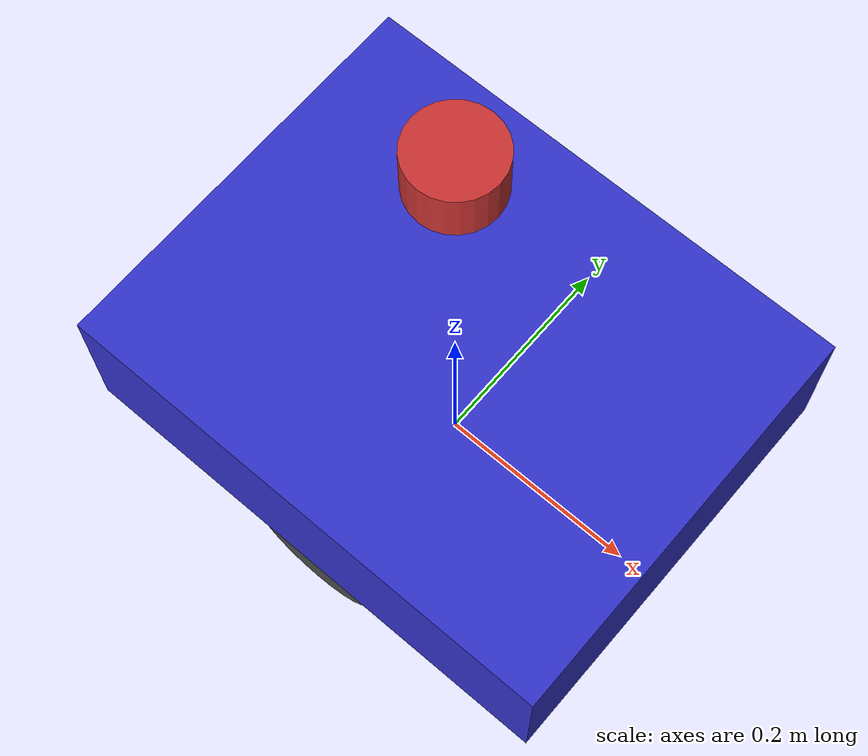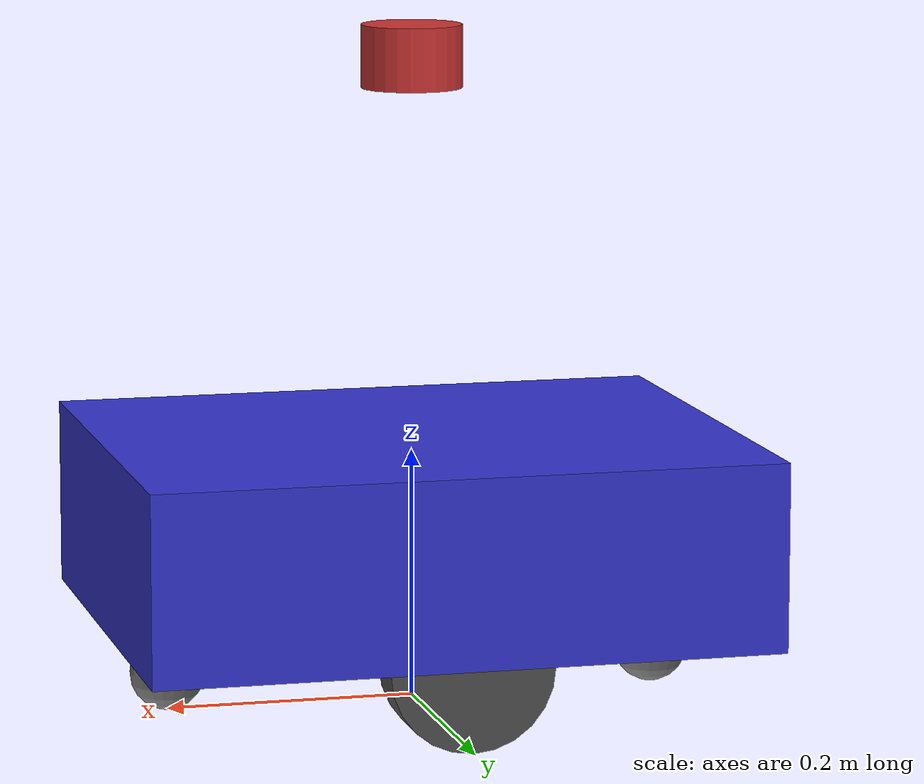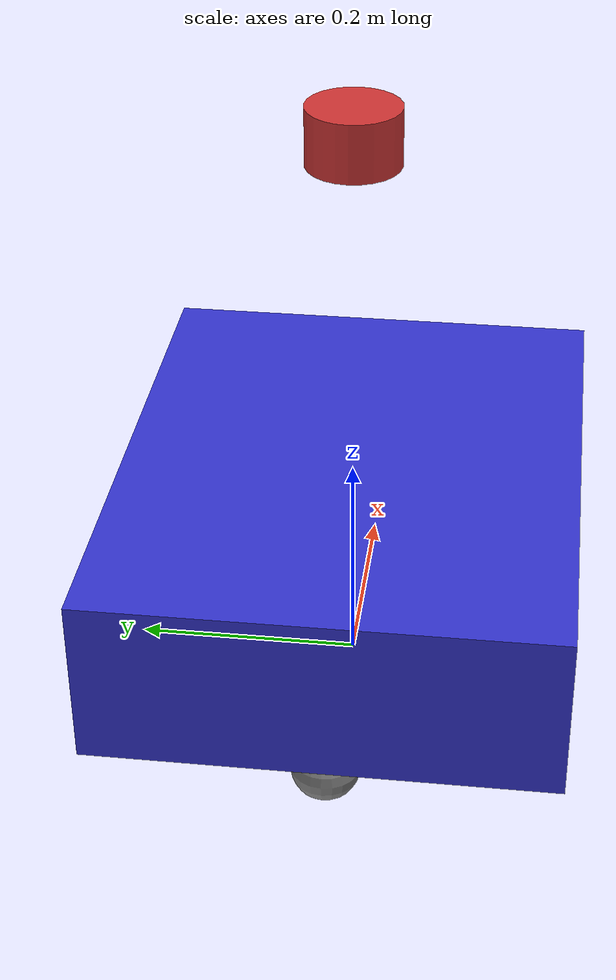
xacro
<?xml version="1.0"?>
<robot name="robo_cart" xmlns:xacro="http://www.ros.org/wiki/xacro">

  <!-- Параметры робота -->
  <xacro:property name="base_length" value="0.5"/>
  <xacro:property name="base_width" value="0.4"/>
  <xacro:property name="base_height" value="0.15"/>
  <xacro:property name="base_mass" value="20.0"/>

  <xacro:property name="wheel_radius" value="0.065"/>
  <xacro:property name="wheel_width" value="0.04"/>
  <xacro:property name="wheel_mass" value="0.5"/>
  <xacro:property name="wheel_separation" value="0.35"/>

  <xacro:property name="caster_radius" value="0.03"/>
  <xacro:property name="caster_mass" value="0.2"/>

  <xacro:property name="lidar_height" value="0.3"/>

  <!-- Импорт макросов -->
  <xacro:include filename="$(find robo_description)/urdf/materials.xacro"/>
  <xacro:include filename="$(find robo_description)/urdf/inertial_macros.xacro"/>
  <xacro:include filename="$(find robo_description)/urdf/gazebo.xacro"/>

  <!-- Базовая ссылка (фиктивная) -->
  <link name="base_footprint"/>

  <!-- Соединение с основным корпусом -->
  <joint name="base_joint" type="fixed">
    <parent link="base_footprint"/>
    <child link="base_link"/>
    <origin xyz="0 0 ${wheel_radius}" rpy="0 0 0"/>
  </joint>

  <!-- Основной корпус тележки -->
  <link name="base_link">
    <visual>
      <origin xyz="0 0 ${base_height/2}" rpy="0 0 0"/>
      <geometry>
        <box size="${base_length} ${base_width} ${base_height}"/>
      </geometry>
      <material name="blue"/>
    </visual>
    <collision>
      <origin xyz="0 0 ${base_height/2}" rpy="0 0 0"/>
      <geometry>
        <box size="${base_length} ${base_width} ${base_height}"/>
      </geometry>
    </collision>
    <xacro:box_inertia m="${base_mass}" l="${base_length}" w="${base_width}" h="${base_height}">
      <origin xyz="0 0 ${base_height/2}" rpy="0 0 0"/>
    </xacro:box_inertia>
  </link>

  <!-- Левое колесо -->
  <joint name="left_wheel_joint" type="continuous">
    <parent link="base_link"/>
    <child link="left_wheel"/>
    <origin xyz="0 ${wheel_separation/2} 0" rpy="-${pi/2} 0 0"/>
    <axis xyz="0 0 1"/>
  </joint>

  <link name="left_wheel">
    <visual>
      <geometry>
        <cylinder radius="${wheel_radius}" length="${wheel_width}"/>
      </geometry>
      <material name="dark_gray"/>
    </visual>
    <collision>
      <geometry>
        <cylinder radius="${wheel_radius}" length="${wheel_width}"/>
      </geometry>
    </collision>
    <xacro:cylinder_inertia m="${wheel_mass}" r="${wheel_radius}" h="${wheel_width}">
      <origin xyz="0 0 0" rpy="0 0 0"/>
    </xacro:cylinder_inertia>
  </link>

  <!-- Правое колесо -->
  <joint name="right_wheel_joint" type="continuous">
    <parent link="base_link"/>
    <child link="right_wheel"/>
    <origin xyz="0 -${wheel_separation/2} 0" rpy="-${pi/2} 0 0"/>
    <axis xyz="0 0 1"/>
  </joint>

  <link name="right_wheel">
    <visual>
      <geometry>
        <cylinder radius="${wheel_radius}" length="${wheel_width}"/>
      </geometry>
      <material name="dark_gray"/>
    </visual>
    <collision>
      <geometry>
        <cylinder radius="${wheel_radius}" length="${wheel_width}"/>
      </geometry>
    </collision>
    <xacro:cylinder_inertia m="${wheel_mass}" r="${wheel_radius}" h="${wheel_width}">
      <origin xyz="0 0 0" rpy="0 0 0"/>
    </xacro:cylinder_inertia>
  </link>

  <!-- Переднее поворотное колесо (caster) -->
  <joint name="front_caster_joint" type="fixed">
    <parent link="base_link"/>
    <child link="front_caster"/>
    <origin xyz="${base_length/2 - 0.05} 0 -${wheel_radius - caster_radius}" rpy="0 0 0"/>
  </joint>

  <link name="front_caster">
    <visual>
      <geometry>
        <sphere radius="${caster_radius}"/>
      </geometry>
      <material name="gray"/>
    </visual>
    <collision>
      <geometry>
        <sphere radius="${caster_radius}"/>
      </geometry>
    </collision>
    <xacro:sphere_inertia m="${caster_mass}" r="${caster_radius}">
      <origin xyz="0 0 0" rpy="0 0 0"/>
    </xacro:sphere_inertia>
  </link>

  <!-- Заднее поворотное колесо (caster) -->
  <joint name="rear_caster_joint" type="fixed">
    <parent link="base_link"/>
    <child link="rear_caster"/>
    <origin xyz="-${base_length/2 - 0.05} 0 -${wheel_radius - caster_radius}" rpy="0 0 0"/>
  </joint>

  <link name="rear_caster">
    <visual>
      <geometry>
        <sphere radius="${caster_radius}"/>
      </geometry>
      <material name="gray"/>
    </visual>
    <collision>
      <geometry>
        <sphere radius="${caster_radius}"/>
      </geometry>
    </collision>
    <xacro:sphere_inertia m="${caster_mass}" r="${caster_radius}">
      <origin xyz="0 0 0" rpy="0 0 0"/>
    </xacro:sphere_inertia>
  </link>

  <!-- LIDAR монтаж -->
  <joint name="lidar_joint" type="fixed">
    <parent link="base_link"/>
    <child link="lidar_link"/>
    <origin xyz="0 0 ${base_height + lidar_height}" rpy="0 0 0"/>
  </joint>

  <link name="lidar_link">
    <visual>
      <geometry>
        <cylinder radius="0.04" length="0.05"/>
      </geometry>
      <material name="red"/>
    </visual>
    <collision>
      <geometry>
        <cylinder radius="0.04" length="0.05"/>
      </geometry>
    </collision>
    <inertial>
      <mass value="0.125"/>
      <inertia ixx="0.001" ixy="0" ixz="0" iyy="0.001" iyz="0" izz="0.001"/>
    </inertial>
  </link>

  <!-- Включение Gazebo плагинов -->
  <xacro:gazebo_plugins/>

</robot>

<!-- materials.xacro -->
<robot xmlns:xacro="http://www.ros.org/wiki/xacro">

  <!-- Цвета для визуализации в RVIZ -->
  <material name="blue">
    <color rgba="0.2 0.2 0.8 1.0"/>
  </material>

  <material name="red">
    <color rgba="0.8 0.2 0.2 1.0"/>
  </material>

  <material name="green">
    <color rgba="0.2 0.8 0.2 1.0"/>
  </material>

  <material name="gray">
    <color rgba="0.5 0.5 0.5 1.0"/>
  </material>

  <material name="dark_gray">
    <color rgba="0.3 0.3 0.3 1.0"/>
  </material>

  <material name="white">
    <color rgba="1.0 1.0 1.0 1.0"/>
  </material>

  <material name="black">
    <color rgba="0.0 0.0 0.0 1.0"/>
  </material>

</robot>

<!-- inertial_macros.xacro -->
<robot xmlns:xacro="http://www.ros.org/wiki/xacro">

  <!-- Макрос для инерции коробки -->
  <xacro:macro name="box_inertia" params="m l w h *origin">
    <inertial>
      <xacro:insert_block name="origin"/>
      <mass value="${m}"/>
      <inertia ixx="${(m/12) * (h*h + w*w)}" ixy="0" ixz="0"
               iyy="${(m/12) * (l*l + h*h)}" iyz="0"
               izz="${(m/12) * (l*l + w*w)}"/>
    </inertial>
  </xacro:macro>

  <!-- Макрос для инерции цилиндра -->
  <xacro:macro name="cylinder_inertia" params="m r h *origin">
    <inertial>
      <xacro:insert_block name="origin"/>
      <mass value="${m}"/>
      <inertia ixx="${(m/12) * (3*r*r + h*h)}" ixy="0" ixz="0"
               iyy="${(m/12) * (3*r*r + h*h)}" iyz="0"
               izz="${(m/2) * r*r}"/>
    </inertial>
  </xacro:macro>

  <!-- Макрос для инерции сферы -->
  <xacro:macro name="sphere_inertia" params="m r *origin">
    <inertial>
      <xacro:insert_block name="origin"/>
      <mass value="${m}"/>
      <inertia ixx="${(2/5) * m * r * r}" ixy="0" ixz="0"
               iyy="${(2/5) * m * r * r}" iyz="0"
               izz="${(2/5) * m * r * r}"/>
    </inertial>
  </xacro:macro>

</robot>
